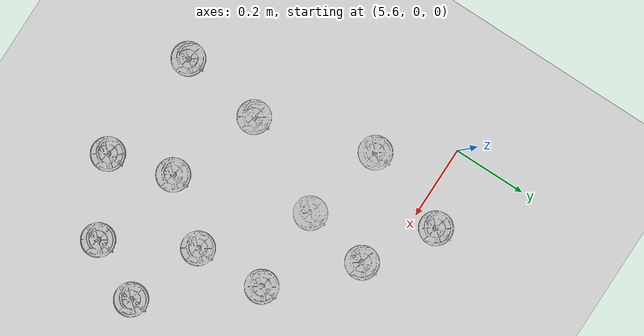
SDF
<sdf version="1.7">
 <world name="default">
  <model name="ground_plane">
   <static>1</static>
   <link name="link">
    <collision name="collision">
     <geometry><plane><normal>0 0 1</normal><size>100 100</size></plane></geometry>
     <surface><friction><ode><mu>100</mu><mu2>50</mu2></ode></friction></surface>
    </collision>
    <visual name="visual">
     <cast_shadows>0</cast_shadows>
     <geometry><plane><normal>0 0 1</normal><size>100 100</size></plane></geometry>
     <material>
      <script><uri>file://media/materials/scripts/gazebo.material</uri><name>Gazebo/Grey</name></script>
     </material>
    </visual>
   </link>
  </model>
  <model name="HV8">
   <pose>6.05486 -0.587769 3e-06 -0.000164 -2.7e-05 0.001546</pose>
   <static>0</static>
   <link name="HV8">
    <inertial>
     <mass>0.05</mass>
     <inertia><ixx>0.0002</ixx><ixy>0</ixy><ixz>0</ixz><iyy>0.0002</iyy><iyz>0</iyz><izz>0.0002</izz></inertia>
    </inertial>
    <collision name="collishin">
     <geometry><mesh><uri>model://HV8/meshes/HV8_1.stl</uri></mesh></geometry>
    </collision>
    <visual name="visual"><geometry><mesh><uri>model://HV8/meshes/HV8_1.stl</uri></mesh></geometry></visual>
   </link>
  </model>
  <model name="HV8_0">
   <pose>6.3866 -0.503786 3e-06 -0.000164 -2.7e-05 0.001541</pose>
   <static>0</static>
   <link name="HV8">
    <inertial>
     <mass>0.05</mass>
     <inertia><ixx>0.0002</ixx><ixy>0</ixy><ixz>0</ixz><iyy>0.0002</iyy><iyz>0</iyz><izz>0.0002</izz></inertia>
    </inertial>
    <collision name="collishin">
     <geometry><mesh><uri>model://HV8/meshes/HV8_1.stl</uri></mesh></geometry>
    </collision>
    <visual name="visual"><geometry><mesh><uri>model://HV8/meshes/HV8_1.stl</uri></mesh></geometry></visual>
   </link>
  </model>
  <model name="HV8_1">
   <pose>6.30303 -0.659716 3e-06 -0.000164 -2.7e-05 0.001488</pose>
   <static>0</static>
   <link name="HV8">
    <inertial>
     <mass>0.05</mass>
     <inertia><ixx>0.0002</ixx><ixy>0</ixy><ixz>0</ixz><iyy>0.0002</iyy><iyz>0</iyz><izz>0.0002</izz></inertia>
    </inertial>
    <collision name="collishin">
     <geometry><mesh><uri>model://HV8/meshes/HV8_1.stl</uri></mesh></geometry>
    </collision>
    <visual name="visual"><geometry><mesh><uri>model://HV8/meshes/HV8_1.stl</uri></mesh></geometry></visual>
   </link>
  </model>
  <model name="HV8_4">
   <pose>6.10139 -0.759802 -1.8e-05 0.000274 0.000329 0.00175</pose>
   <static>0</static>
   <link name="HV8">
    <inertial>
     <mass>0.05</mass>
     <inertia><ixx>0.0002</ixx><ixy>0</ixy><ixz>0</ixz><iyy>0.0002</iyy><iyz>0</iyz><izz>0.0002</izz></inertia>
    </inertial>
    <collision name="collishin">
     <geometry><mesh><uri>model://HV8/meshes/HV8_1.stl</uri></mesh></geometry>
    </collision>
    <visual name="visual"><geometry><mesh><uri>model://HV8/meshes/HV8_1.stl</uri></mesh></geometry></visual>
   </link>
  </model>
  <model name="HV8_7">
   <pose>5.78005 -0.718407 3e-06 -0.000164 -2.7e-05 0.001488</pose>
   <static>0</static>
   <link name="HV8">
    <inertial>
     <mass>0.05</mass>
     <inertia><ixx>0.0002</ixx><ixy>0</ixy><ixz>0</ixz><iyy>0.0002</iyy><iyz>0</iyz><izz>0.0002</izz></inertia>
    </inertial>
    <collision name="collishin">
     <geometry><mesh><uri>model://HV8/meshes/HV8_1.stl</uri></mesh></geometry>
    </collision>
    <visual name="visual"><geometry><mesh><uri>model://HV8/meshes/HV8_1.stl</uri></mesh></geometry></visual>
   </link>
  </model>
  <model name="HV8_12">
   <pose>5.94493 -0.234065 3e-06 -0.000164 -2.7e-05 0.001487</pose>
   <static>0</static>
   <link name="HV8">
    <inertial>
     <mass>0.05</mass>
     <inertia><ixx>0.0002</ixx><ixy>0</ixy><ixz>0</ixz><iyy>0.0002</iyy><iyz>0</iyz><izz>0.0002</izz></inertia>
    </inertial>
    <collision name="collishin">
     <geometry><mesh><uri>model://HV8/meshes/HV8_1.stl</uri></mesh></geometry>
    </collision>
    <visual name="visual"><geometry><mesh><uri>model://HV8/meshes/HV8_1.stl</uri></mesh></geometry></visual>
   </link>
  </model>
  <model name="HV8_13">
   <pose>5.81443 -0.492459 3e-06 -0.000164 -2.7e-05 0.001485</pose>
   <static>0</static>
   <link name="HV8">
    <inertial>
     <mass>0.05</mass>
     <inertia><ixx>0.0002</ixx><ixy>0</ixy><ixz>0</ixz><iyy>0.0002</iyy><iyz>0</iyz><izz>0.0002</izz></inertia>
    </inertial>
    <collision name="collishin">
     <geometry><mesh><uri>model://HV8/meshes/HV8_1.stl</uri></mesh></geometry>
    </collision>
    <visual name="visual"><geometry><mesh><uri>model://HV8/meshes/HV8_1.stl</uri></mesh></geometry></visual>
   </link>
  </model>
  <model name="HV8_17">
   <pose>5.72085 -0.177511 -1.8e-05 0.000274 0.000329 0.001742</pose>
   <static>0</static>
   <link name="HV8">
    <inertial>
     <mass>0.05</mass>
     <inertia><ixx>0.0002</ixx><ixy>0</ixy><ixz>0</ixz><iyy>0.0002</iyy><iyz>0</iyz><izz>0.0002</izz></inertia>
    </inertial>
    <collision name="collishin">
     <geometry><mesh><uri>model://HV8/meshes/HV8_1.stl</uri></mesh></geometry>
    </collision>
    <visual name="visual"><geometry><mesh><uri>model://HV8/meshes/HV8_1.stl</uri></mesh></geometry></visual>
   </link>
  </model>
  <model name="HV8_18">
   <pose>6.18028 -0.429794 -1.8e-05 0.000274 0.000329 0.001483</pose>
   <static>0</static>
   <link name="HV8">
    <inertial>
     <mass>0.05</mass>
     <inertia><ixx>0.0002</ixx><ixy>0</ixy><ixz>0</ixz><iyy>0.0002</iyy><iyz>0</iyz><izz>0.0002</izz></inertia>
    </inertial>
    <collision name="collishin">
     <geometry><mesh><uri>model://HV8/meshes/HV8_1.stl</uri></mesh></geometry>
    </collision>
    <visual name="visual"><geometry><mesh><uri>model://HV8/meshes/HV8_1.stl</uri></mesh></geometry></visual>
   </link>
  </model>
  <model name="HV8_19">
   <pose>6.1742 -0.236865 3e-06 -0.000164 -2.7e-05 0.001484</pose>
   <static>0</static>
   <link name="HV8">
    <inertial>
     <mass>0.05</mass>
     <inertia><ixx>0.0002</ixx><ixy>0</ixy><ixz>0</ixz><iyy>0.0002</iyy><iyz>0</iyz><izz>0.0002</izz></inertia>
    </inertial>
    <collision name="collishin">
     <geometry><mesh><uri>model://HV8/meshes/HV8_1.stl</uri></mesh></geometry>
    </collision>
    <visual name="visual"><geometry><mesh><uri>model://HV8/meshes/HV8_1.stl</uri></mesh></geometry></visual>
   </link>
  </model>
  <model name="HV8_20">
   <pose>5.97998 -0.051507 3e-06 -0.000164 -2.7e-05 0.001485</pose>
   <static>0</static>
   <link name="HV8">
    <inertial>
     <mass>0.05</mass>
     <inertia><ixx>0.0002</ixx><ixy>0</ixy><ixz>0</ixz><iyy>0.0002</iyy><iyz>0</iyz><izz>0.0002</izz></inertia>
    </inertial>
    <collision name="collishin">
     <geometry><mesh><uri>model://HV8/meshes/HV8_1.stl</uri></mesh></geometry>
    </collision>
    <visual name="visual"><geometry><mesh><uri>model://HV8/meshes/HV8_1.stl</uri></mesh></geometry></visual>
   </link>
  </model>
  <model name="HV8_21">
   <pose>5.80064 0.061346 3e-06 -0.000164 -2.7e-05 0.001483</pose>
   <static>0</static>
   <link name="HV8">
    <inertial>
     <mass>0.05</mass>
     <inertia><ixx>0.0002</ixx><ixy>0</ixy><ixz>0</ixz><iyy>0.0002</iyy><iyz>0</iyz><izz>0.0002</izz></inertia>
    </inertial>
    <collision name="collishin">
     <geometry><mesh><uri>model://HV8/meshes/HV8_1.stl</uri></mesh></geometry>
    </collision>
    <visual name="visual"><geometry><mesh><uri>model://HV8/meshes/HV8_1.stl</uri></mesh></geometry></visual>
   </link>
  </model>
 </world>
</sdf>
